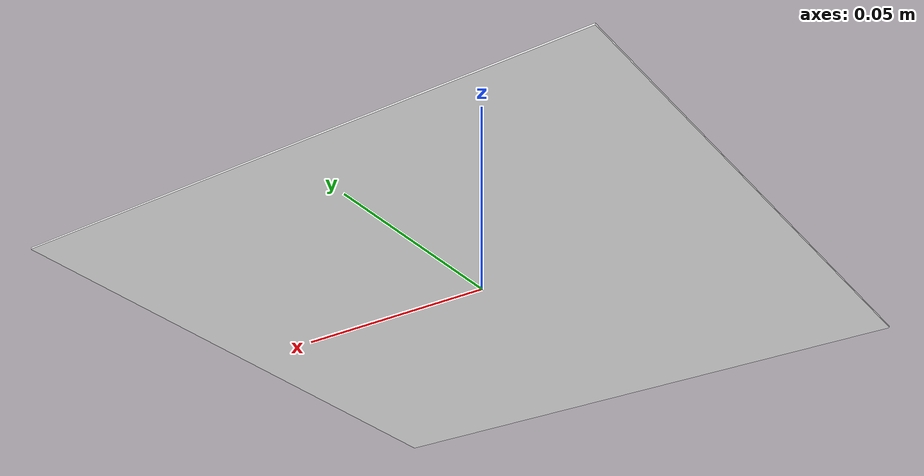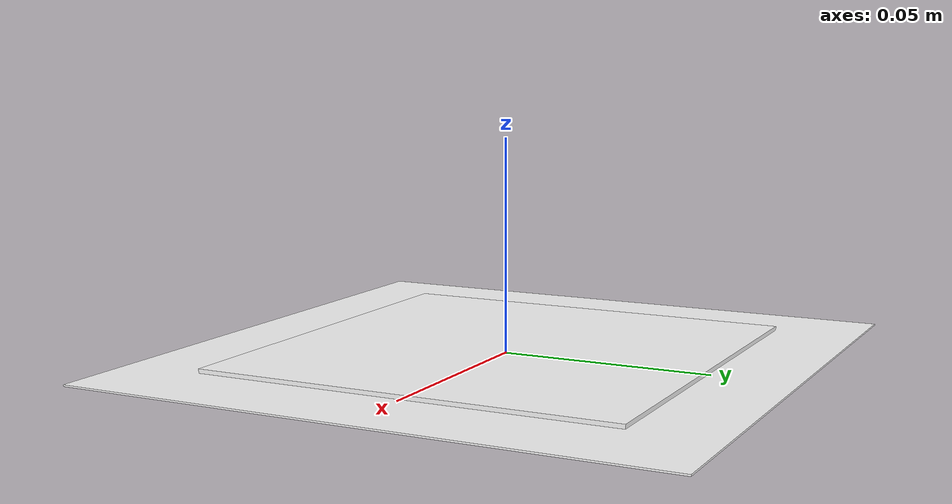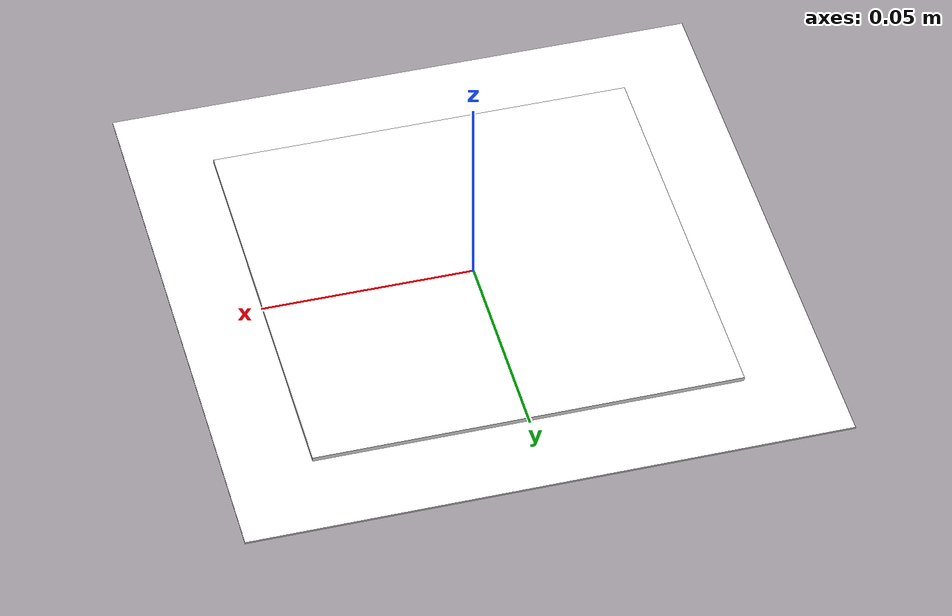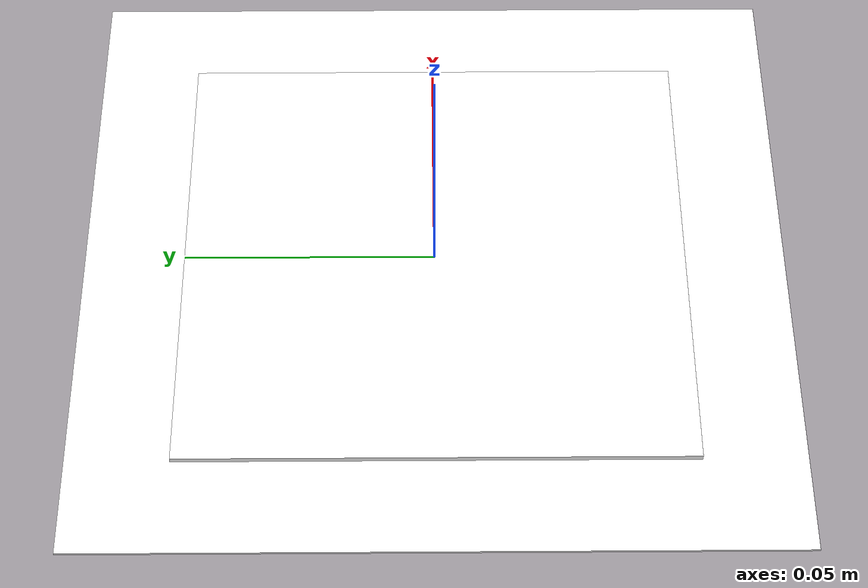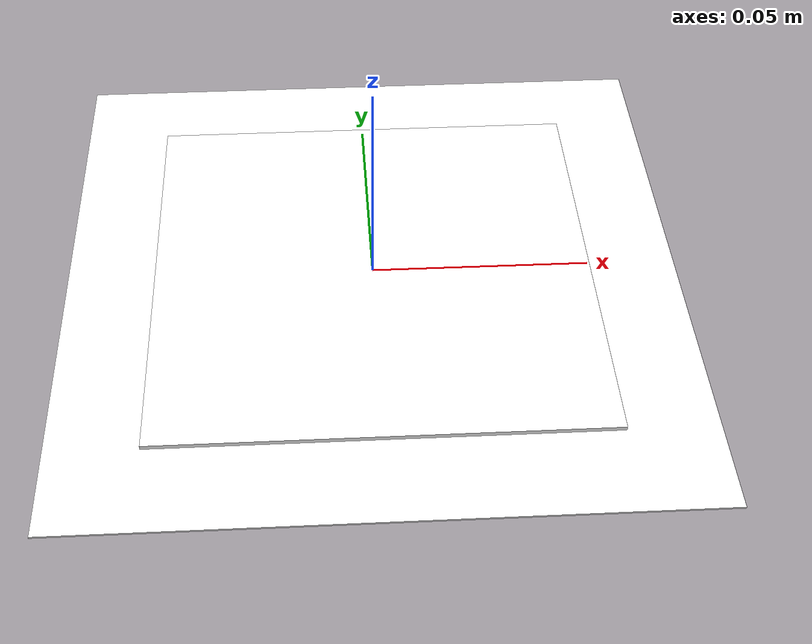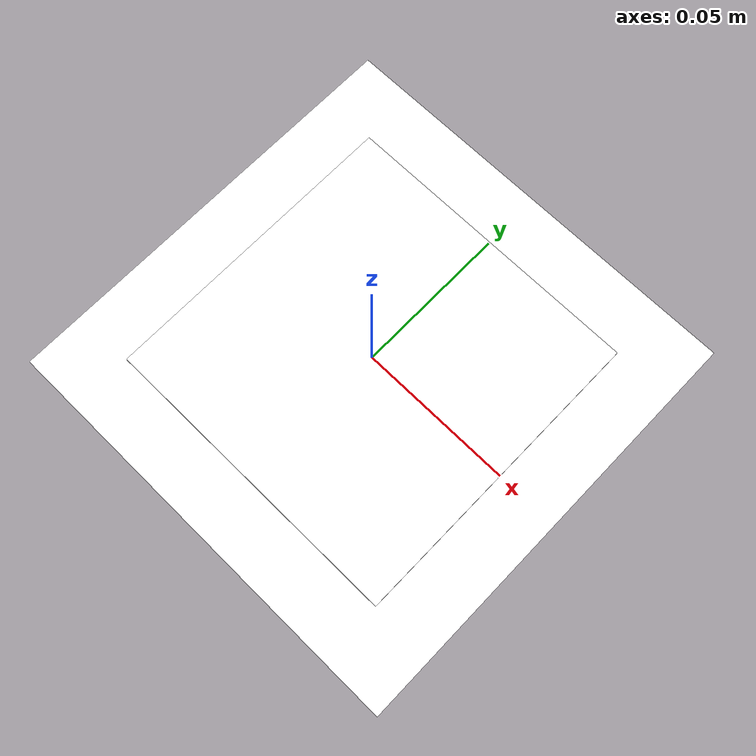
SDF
<?xml version="1.0" ?>
<sdf version="1.9">
  <model name="aruco_20_tag">
    <pose>0 0 0 0 0 0</pose>
    <static>true</static>
    <link name="link">
      <visual name="border_20">
      <pose >0.0 0 0.0 0 0 0</pose>
      <geometry>
        <box>
          <size>0.14 0.14 0.0004</size>
        </box>
      </geometry>
      <material>
        <diffuse>1 1 1 1</diffuse> <!-- Weiß -->
      </material>
    </visual>

      <visual name="visual_20">
      <pose >0.0 0 0.001 0 0 0</pose>
        <geometry>
          <box>
            <size>0.1 0.1 0.001</size>
          </box>
        </geometry>
        <material>
          <diffuse>1 1 1 1</diffuse>
          <pbr>
            <metal>
              <albedo_map>file://models/aruco_20/aruco_20.png</albedo_map>
              <metalness>0.0</metalness>
              <roughness>0.8</roughness>
            </metal>
          </pbr>
        </material>
      </visual>
    </link>
</model>
</sdf>
